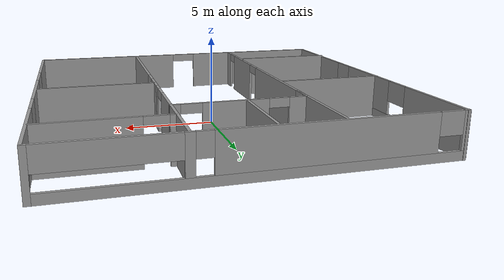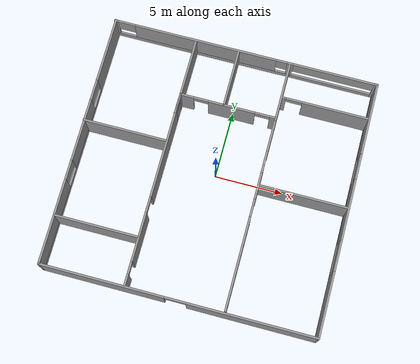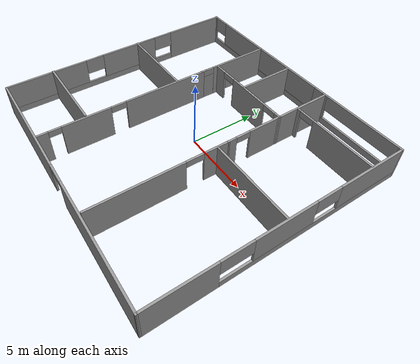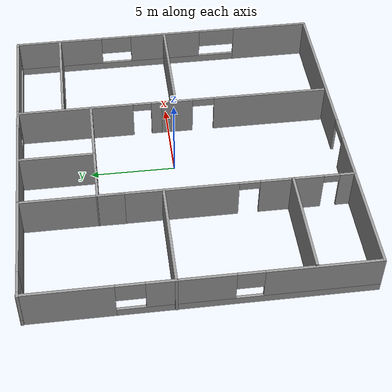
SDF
<?xml version="1.0" ?>
<sdf version="1.6">
  <world name="default">
    <include>
      <uri>file://home/user-221/meha/building_editor_models/Untitled/model.sdf</uri>
    </include>
  </world>
</sdf>

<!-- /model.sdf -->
<sdf version='1.7'>
  <model name='Untitled1'>
    <pose>-0.148351 -0.347684 0 0 -0 0</pose>
    <link name='Wall_0'>
      <pose>-9.906 7.5e-05 0 0 -0 -1.5708</pose>
      <visual name='Wall_0_Visual_0'>
        <pose>-7.01328 0 1.25 0 -0 0</pose>
        <geometry>
          <box>
            <size>4.97344 0.15 2.5</size>
          </box>
        </geometry>
        <material>
          <script>
            <uri>file://media/materials/scripts/gazebo.material</uri>
            <name>Gazebo/Grey</name>
          </script>
          <ambient>1 1 1 1</ambient>
        </material>
        <meta>
          <layer>0</layer>
        </meta>
      </visual>
      <collision name='Wall_0_Collision_0'>
        <geometry>
          <box>
            <size>4.97344 0.15 2.5</size>
          </box>
        </geometry>
        <pose>-7.01328 0 1.25 0 -0 0</pose>
      </collision>
      <visual name='Wall_0_Visual_1'>
        <pose>2.48672 0 0.25 0 -0 0</pose>
        <geometry>
          <box>
            <size>14.0266 0.15 0.5</size>
          </box>
        </geometry>
        <material>
          <script>
            <uri>file://media/materials/scripts/gazebo.material</uri>
            <name>Gazebo/Grey</name>
          </script>
          <ambient>1 1 1 1</ambient>
        </material>
        <meta>
          <layer>0</layer>
        </meta>
      </visual>
      <collision name='Wall_0_Collision_1'>
        <geometry>
          <box>
            <size>14.0266 0.15 0.5</size>
          </box>
        </geometry>
        <pose>2.48672 0 0.25 0 -0 0</pose>
      </collision>
      <visual name='Wall_0_Visual_2'>
        <pose>-0.614893 0 1.5 0 -0 0</pose>
        <geometry>
          <box>
            <size>4.7017 0.15 2</size>
          </box>
        </geometry>
        <material>
          <script>
            <uri>file://media/materials/scripts/gazebo.material</uri>
            <name>Gazebo/Grey</name>
          </script>
          <ambient>1 1 1 1</ambient>
        </material>
        <meta>
          <layer>0</layer>
        </meta>
      </visual>
      <collision name='Wall_0_Collision_2'>
        <geometry>
          <box>
            <size>4.7017 0.15 2</size>
          </box>
        </geometry>
        <pose>-0.614893 0 1.5 0 -0 0</pose>
      </collision>
      <visual name='Wall_0_Visual_3'>
        <pose>6.35026 0 1.5 0 -0 0</pose>
        <geometry>
          <box>
            <size>6.29948 0.15 2</size>
          </box>
        </geometry>
        <material>
          <script>
            <uri>file://media/materials/scripts/gazebo.material</uri>
            <name>Gazebo/Grey</name>
          </script>
          <ambient>1 1 1 1</ambient>
        </material>
        <meta>
          <layer>0</layer>
        </meta>
      </visual>
      <collision name='Wall_0_Collision_3'>
        <geometry>
          <box>
            <size>6.29948 0.15 2</size>
          </box>
        </geometry>
        <pose>6.35026 0 1.5 0 -0 0</pose>
      </collision>
      <visual name='Wall_0_Visual_4'>
        <pose>-3.74615 0 1.9 0 -0 0</pose>
        <geometry>
          <box>
            <size>1.56082 0.15 1.2</size>
          </box>
        </geometry>
        <material>
          <script>
            <uri>file://media/materials/scripts/gazebo.material</uri>
            <name>Gazebo/Grey</name>
          </script>
          <ambient>1 1 1 1</ambient>
        </material>
        <meta>
          <layer>0</layer>
        </meta>
      </visual>
      <collision name='Wall_0_Collision_4'>
        <geometry>
          <box>
            <size>1.56082 0.15 1.2</size>
          </box>
        </geometry>
        <pose>-3.74615 0 1.9 0 -0 0</pose>
      </collision>
      <visual name='Wall_0_Visual_5'>
        <pose>2.46824 0 1.9 0 -0 0</pose>
        <geometry>
          <box>
            <size>1.46456 0.15 1.2</size>
          </box>
        </geometry>
        <material>
          <script>
            <uri>file://media/materials/scripts/gazebo.material</uri>
            <name>Gazebo/Grey</name>
          </script>
          <ambient>1 1 1 1</ambient>
        </material>
        <meta>
          <layer>0</layer>
        </meta>
      </visual>
      <collision name='Wall_0_Collision_5'>
        <geometry>
          <box>
            <size>1.46456 0.15 1.2</size>
          </box>
        </geometry>
        <pose>2.46824 0 1.9 0 -0 0</pose>
      </collision>
    </link>
    <link name='Wall_14'>
      <collision name='Wall_14_Collision'>
        <geometry>
          <box>
            <size>4.3 0.15 2.5</size>
          </box>
        </geometry>
        <pose>0 0 1.25 0 -0 0</pose>
      </collision>
      <visual name='Wall_14_Visual'>
        <pose>0 0 1.25 0 -0 0</pose>
        <geometry>
          <box>
            <size>4.3 0.15 2.5</size>
          </box>
        </geometry>
        <material>
          <script>
            <uri>file://media/materials/scripts/gazebo.material</uri>
            <name>Gazebo/Grey</name>
          </script>
          <ambient>1 1 1 1</ambient>
        </material>
        <meta>
          <layer>0</layer>
        </meta>
      </visual>
      <pose>-0.498032 7.17588 0 0 -0 1.5708</pose>
    </link>
    <link name='Wall_16'>
      <pose>6.63269 6.70464 0 0 -0 0</pose>
      <visual name='Wall_16_Visual_0'>
        <pose>-3.07779 0 1.25 0 -0 0</pose>
        <geometry>
          <box>
            <size>0.344418 0.15 2.5</size>
          </box>
        </geometry>
        <material>
          <script>
            <uri>file://media/materials/scripts/gazebo.material</uri>
            <name>Gazebo/Grey</name>
          </script>
          <ambient>1 1 1 1</ambient>
        </material>
        <meta>
          <layer>0</layer>
        </meta>
      </visual>
      <collision name='Wall_16_Collision_0'>
        <geometry>
          <box>
            <size>0.344418 0.15 2.5</size>
          </box>
        </geometry>
        <pose>-3.07779 0 1.25 0 -0 0</pose>
      </collision>
      <visual name='Wall_16_Visual_1'>
        <pose>0.778731 0 1.25 0 -0 0</pose>
        <geometry>
          <box>
            <size>4.94254 0.15 2.5</size>
          </box>
        </geometry>
        <material>
          <script>
            <uri>file://media/materials/scripts/gazebo.material</uri>
            <name>Gazebo/Grey</name>
          </script>
          <ambient>1 1 1 1</ambient>
        </material>
        <meta>
          <layer>0</layer>
        </meta>
      </visual>
      <collision name='Wall_16_Collision_1'>
        <geometry>
          <box>
            <size>4.94254 0.15 2.5</size>
          </box>
        </geometry>
        <pose>0.778731 0 1.25 0 -0 0</pose>
      </collision>
      <visual name='Wall_16_Visual_2'>
        <pose>-2.29906 0 2.25 0 -0 0</pose>
        <geometry>
          <box>
            <size>1.21304 0.15 0.5</size>
          </box>
        </geometry>
        <material>
          <script>
            <uri>file://media/materials/scripts/gazebo.material</uri>
            <name>Gazebo/Grey</name>
          </script>
          <ambient>1 1 1 1</ambient>
        </material>
        <meta>
          <layer>0</layer>
        </meta>
      </visual>
      <collision name='Wall_16_Collision_2'>
        <geometry>
          <box>
            <size>1.21304 0.15 0.5</size>
          </box>
        </geometry>
        <pose>-2.29906 0 2.25 0 -0 0</pose>
      </collision>
    </link>
    <link name='Wall_18'>
      <collision name='Wall_18_Collision'>
        <geometry>
          <box>
            <size>6.5 0.15 2.5</size>
          </box>
        </geometry>
        <pose>0 0 1.25 0 -0 0</pose>
      </collision>
      <visual name='Wall_18_Visual'>
        <pose>0 0 1.25 0 -0 0</pose>
        <geometry>
          <box>
            <size>6.5 0.15 2.5</size>
          </box>
        </geometry>
        <material>
          <script>
            <uri>file://media/materials/scripts/gazebo.material</uri>
            <name>Gazebo/Grey</name>
          </script>
          <ambient>1 1 1 1</ambient>
        </material>
        <meta>
          <layer>0</layer>
        </meta>
      </visual>
      <pose>6.62268 -0.095935 0 0 -0 0</pose>
    </link>
    <link name='Wall_2'>
      <pose>0.019003 -9.42492 0 0 -0 0</pose>
      <visual name='Wall_2_Visual_0'>
        <pose>-5.4775 0 1.25 0 -0 0</pose>
        <geometry>
          <box>
            <size>9.045 0.15 2.5</size>
          </box>
        </geometry>
        <material>
          <script>
            <uri>file://media/materials/scripts/gazebo.material</uri>
            <name>Gazebo/Grey</name>
          </script>
          <ambient>1 1 1 1</ambient>
        </material>
        <meta>
          <layer>0</layer>
        </meta>
      </visual>
      <collision name='Wall_2_Collision_0'>
        <geometry>
          <box>
            <size>9.045 0.15 2.5</size>
          </box>
        </geometry>
        <pose>-5.4775 0 1.25 0 -0 0</pose>
      </collision>
      <visual name='Wall_2_Visual_1'>
        <pose>5.3025 0 1.25 0 -0 0</pose>
        <geometry>
          <box>
            <size>9.395 0.15 2.5</size>
          </box>
        </geometry>
        <material>
          <script>
            <uri>file://media/materials/scripts/gazebo.material</uri>
            <name>Gazebo/Grey</name>
          </script>
          <ambient>1 1 1 1</ambient>
        </material>
        <meta>
          <layer>0</layer>
        </meta>
      </visual>
      <collision name='Wall_2_Collision_1'>
        <geometry>
          <box>
            <size>9.395 0.15 2.5</size>
          </box>
        </geometry>
        <pose>5.3025 0 1.25 0 -0 0</pose>
      </collision>
      <visual name='Wall_2_Visual_2'>
        <pose>-0.175 0 2.25 0 -0 0</pose>
        <geometry>
          <box>
            <size>1.56 0.15 0.5</size>
          </box>
        </geometry>
        <material>
          <script>
            <uri>file://media/materials/scripts/gazebo.material</uri>
            <name>Gazebo/Grey</name>
          </script>
          <ambient>1 1 1 1</ambient>
        </material>
        <meta>
          <layer>0</layer>
        </meta>
      </visual>
      <collision name='Wall_2_Collision_2'>
        <geometry>
          <box>
            <size>1.56 0.15 0.5</size>
          </box>
        </geometry>
        <pose>-0.175 0 2.25 0 -0 0</pose>
      </collision>
    </link>
    <link name='Wall_20'>
      <collision name='Wall_20_Collision'>
        <geometry>
          <box>
            <size>6.25 0.15 2.5</size>
          </box>
        </geometry>
        <pose>0 0 1.25 0 -0 0</pose>
      </collision>
      <visual name='Wall_20_Visual'>
        <pose>0 0 1.25 0 -0 0</pose>
        <geometry>
          <box>
            <size>6.25 0.15 2.5</size>
          </box>
        </geometry>
        <material>
          <script>
            <uri>file://media/materials/scripts/gazebo.material</uri>
            <name>Gazebo/Grey</name>
          </script>
          <ambient>1 1 1 1</ambient>
        </material>
        <meta>
          <layer>0</layer>
        </meta>
      </visual>
      <pose>-6.886 1.38775 0 0 -0 0</pose>
    </link>
    <link name='Wall_22'>
      <collision name='Wall_22_Collision'>
        <geometry>
          <box>
            <size>6.1 0.15 2.6</size>
          </box>
        </geometry>
        <pose>0 0 1.3 0 -0 0</pose>
      </collision>
      <visual name='Wall_22_Visual'>
        <pose>0 0 1.3 0 -0 0</pose>
        <geometry>
          <box>
            <size>6.1 0.15 2.6</size>
          </box>
        </geometry>
        <material>
          <script>
            <uri>file://media/materials/scripts/gazebo.material</uri>
            <name>Gazebo/Grey</name>
          </script>
          <ambient>1 1 1 1</ambient>
        </material>
        <meta>
          <layer>0</layer>
        </meta>
      </visual>
      <pose>-6.83065 -5.87651 0 0 -0 0</pose>
    </link>
    <link name='Wall_28'>
      <pose>-0.176285 5.04782 0 0 -0 0</pose>
      <visual name='Wall_28_Visual_0'>
        <pose>-3.10233 0 1.25 0 -0 0</pose>
        <geometry>
          <box>
            <size>1.06435 0.15 2.5</size>
          </box>
        </geometry>
        <material>
          <script>
            <uri>file://media/materials/scripts/gazebo.material</uri>
            <name>Gazebo/Grey</name>
          </script>
          <ambient>1 1 1 1</ambient>
        </material>
        <meta>
          <layer>0</layer>
        </meta>
      </visual>
      <collision name='Wall_28_Collision_0'>
        <geometry>
          <box>
            <size>1.06435 0.15 2.5</size>
          </box>
        </geometry>
        <pose>-3.10233 0 1.25 0 -0 0</pose>
      </collision>
      <visual name='Wall_28_Visual_1'>
        <pose>0.258559 0 1.25 0 -0 0</pose>
        <geometry>
          <box>
            <size>3.47481 0.15 2.5</size>
          </box>
        </geometry>
        <material>
          <script>
            <uri>file://media/materials/scripts/gazebo.material</uri>
            <name>Gazebo/Grey</name>
          </script>
          <ambient>1 1 1 1</ambient>
        </material>
        <meta>
          <layer>0</layer>
        </meta>
      </visual>
      <collision name='Wall_28_Collision_1'>
        <geometry>
          <box>
            <size>3.47481 0.15 2.5</size>
          </box>
        </geometry>
        <pose>0.258559 0 1.25 0 -0 0</pose>
      </collision>
      <visual name='Wall_28_Visual_2'>
        <pose>3.36088 0 1.25 0 -0 0</pose>
        <geometry>
          <box>
            <size>0.547231 0.15 2.5</size>
          </box>
        </geometry>
        <material>
          <script>
            <uri>file://media/materials/scripts/gazebo.material</uri>
            <name>Gazebo/Grey</name>
          </script>
          <ambient>1 1 1 1</ambient>
        </material>
        <meta>
          <layer>0</layer>
        </meta>
      </visual>
      <collision name='Wall_28_Collision_2'>
        <geometry>
          <box>
            <size>0.547231 0.15 2.5</size>
          </box>
        </geometry>
        <pose>3.36088 0 1.25 0 -0 0</pose>
      </collision>
      <visual name='Wall_28_Visual_3'>
        <pose>-2.0245 0 2.25 0 -0 0</pose>
        <geometry>
          <box>
            <size>1.0913 0.15 0.5</size>
          </box>
        </geometry>
        <material>
          <script>
            <uri>file://media/materials/scripts/gazebo.material</uri>
            <name>Gazebo/Grey</name>
          </script>
          <ambient>1 1 1 1</ambient>
        </material>
        <meta>
          <layer>0</layer>
        </meta>
      </visual>
      <collision name='Wall_28_Collision_3'>
        <geometry>
          <box>
            <size>1.0913 0.15 0.5</size>
          </box>
        </geometry>
        <pose>-2.0245 0 2.25 0 -0 0</pose>
      </collision>
      <visual name='Wall_28_Visual_4'>
        <pose>2.54162 0 2.25 0 -0 0</pose>
        <geometry>
          <box>
            <size>1.0913 0.15 0.5</size>
          </box>
        </geometry>
        <material>
          <script>
            <uri>file://media/materials/scripts/gazebo.material</uri>
            <name>Gazebo/Grey</name>
          </script>
          <ambient>1 1 1 1</ambient>
        </material>
        <meta>
          <layer>0</layer>
        </meta>
      </visual>
      <collision name='Wall_28_Collision_4'>
        <geometry>
          <box>
            <size>1.0913 0.15 0.5</size>
          </box>
        </geometry>
        <pose>2.54162 0 2.25 0 -0 0</pose>
      </collision>
    </link>
    <link name='Wall_3'>
      <pose>9.92492 -0.055146 0 0 -0 1.57283</pose>
      <visual name='Wall_3_Visual_0'>
        <pose>-7.03749 0 1.25 0 -0 0</pose>
        <geometry>
          <box>
            <size>4.81461 0.15 2.5</size>
          </box>
        </geometry>
        <material>
          <script>
            <uri>file://media/materials/scripts/gazebo.material</uri>
            <name>Gazebo/Grey</name>
          </script>
          <ambient>1 1 1 1</ambient>
        </material>
        <meta>
          <layer>0</layer>
        </meta>
      </visual>
      <collision name='Wall_3_Collision_0'>
        <geometry>
          <box>
            <size>4.81461 0.15 2.5</size>
          </box>
        </geometry>
        <pose>-7.03749 0 1.25 0 -0 0</pose>
      </collision>
      <visual name='Wall_3_Visual_1'>
        <pose>2.40731 0 0.25 0 -0 0</pose>
        <geometry>
          <box>
            <size>14.075 0.15 0.5</size>
          </box>
        </geometry>
        <material>
          <script>
            <uri>file://media/materials/scripts/gazebo.material</uri>
            <name>Gazebo/Grey</name>
          </script>
          <ambient>1 1 1 1</ambient>
        </material>
        <meta>
          <layer>0</layer>
        </meta>
      </visual>
      <collision name='Wall_3_Collision_1'>
        <geometry>
          <box>
            <size>14.075 0.15 0.5</size>
          </box>
        </geometry>
        <pose>2.40731 0 0.25 0 -0 0</pose>
      </collision>
      <visual name='Wall_3_Visual_2'>
        <pose>-0.101167 0 1.5 0 -0 0</pose>
        <geometry>
          <box>
            <size>4.52208 0.15 2</size>
          </box>
        </geometry>
        <material>
          <script>
            <uri>file://media/materials/scripts/gazebo.material</uri>
            <name>Gazebo/Grey</name>
          </script>
          <ambient>1 1 1 1</ambient>
        </material>
        <meta>
          <layer>0</layer>
        </meta>
      </visual>
      <collision name='Wall_3_Collision_2'>
        <geometry>
          <box>
            <size>4.52208 0.15 2</size>
          </box>
        </geometry>
        <pose>-0.101167 0 1.5 0 -0 0</pose>
      </collision>
      <visual name='Wall_3_Visual_3'>
        <pose>6.75367 0 1.5 0 -0 0</pose>
        <geometry>
          <box>
            <size>5.38227 0.15 2</size>
          </box>
        </geometry>
        <material>
          <script>
            <uri>file://media/materials/scripts/gazebo.material</uri>
            <name>Gazebo/Grey</name>
          </script>
          <ambient>1 1 1 1</ambient>
        </material>
        <meta>
          <layer>0</layer>
        </meta>
      </visual>
      <collision name='Wall_3_Collision_3'>
        <geometry>
          <box>
            <size>5.38227 0.15 2</size>
          </box>
        </geometry>
        <pose>6.75367 0 1.5 0 -0 0</pose>
      </collision>
      <visual name='Wall_3_Visual_4'>
        <pose>-3.4962 0 1.9 0 -0 0</pose>
        <geometry>
          <box>
            <size>2.26797 0.15 1.2</size>
          </box>
        </geometry>
        <material>
          <script>
            <uri>file://media/materials/scripts/gazebo.material</uri>
            <name>Gazebo/Grey</name>
          </script>
          <ambient>1 1 1 1</ambient>
        </material>
        <meta>
          <layer>0</layer>
        </meta>
      </visual>
      <collision name='Wall_3_Collision_4'>
        <geometry>
          <box>
            <size>2.26797 0.15 1.2</size>
          </box>
        </geometry>
        <pose>-3.4962 0 1.9 0 -0 0</pose>
      </collision>
      <visual name='Wall_3_Visual_5'>
        <pose>3.1112 0 1.9 0 -0 0</pose>
        <geometry>
          <box>
            <size>1.90266 0.15 1.2</size>
          </box>
        </geometry>
        <material>
          <script>
            <uri>file://media/materials/scripts/gazebo.material</uri>
            <name>Gazebo/Grey</name>
          </script>
          <ambient>1 1 1 1</ambient>
        </material>
        <meta>
          <layer>0</layer>
        </meta>
      </visual>
      <collision name='Wall_3_Collision_5'>
        <geometry>
          <box>
            <size>1.90266 0.15 1.2</size>
          </box>
        </geometry>
        <pose>3.1112 0 1.9 0 -0 0</pose>
      </collision>
    </link>
    <link name='Wall_31'>
      <collision name='Wall_31_Collision'>
        <geometry>
          <box>
            <size>1.57673 0.15 2.5</size>
          </box>
        </geometry>
        <pose>0 0 1.25 0 -0 0</pose>
      </collision>
      <visual name='Wall_31_Visual'>
        <pose>0 0 1.25 0 -0 0</pose>
        <geometry>
          <box>
            <size>1.57673 0.15 2.5</size>
          </box>
        </geometry>
        <material>
          <script>
            <uri>file://media/materials/scripts/gazebo.material</uri>
            <name>Gazebo/Grey</name>
          </script>
          <ambient>1 1 1 1</ambient>
        </material>
        <meta>
          <layer>0</layer>
        </meta>
      </visual>
      <pose>-3.74397 4.3345 0 0 -0 -1.58227</pose>
    </link>
    <link name='Wall_33'>
      <pose>3.37747 2.83347 0 0 -0 1.5708</pose>
      <visual name='Wall_33_Visual_0'>
        <pose>-1.79434 0 1.25 0 -0 0</pose>
        <geometry>
          <box>
            <size>0.711314 0.15 2.5</size>
          </box>
        </geometry>
        <material>
          <script>
            <uri>file://media/materials/scripts/gazebo.material</uri>
            <name>Gazebo/Grey</name>
          </script>
          <ambient>1 1 1 1</ambient>
        </material>
        <meta>
          <layer>0</layer>
        </meta>
      </visual>
      <collision name='Wall_33_Collision_0'>
        <geometry>
          <box>
            <size>0.711314 0.15 2.5</size>
          </box>
        </geometry>
        <pose>-1.79434 0 1.25 0 -0 0</pose>
      </collision>
      <visual name='Wall_33_Visual_1'>
        <pose>0.903956 0 1.25 0 -0 0</pose>
        <geometry>
          <box>
            <size>2.49209 0.15 2.5</size>
          </box>
        </geometry>
        <material>
          <script>
            <uri>file://media/materials/scripts/gazebo.material</uri>
            <name>Gazebo/Grey</name>
          </script>
          <ambient>1 1 1 1</ambient>
        </material>
        <meta>
          <layer>0</layer>
        </meta>
      </visual>
      <collision name='Wall_33_Collision_1'>
        <geometry>
          <box>
            <size>2.49209 0.15 2.5</size>
          </box>
        </geometry>
        <pose>0.903956 0 1.25 0 -0 0</pose>
      </collision>
      <visual name='Wall_33_Visual_2'>
        <pose>-0.890387 0 2.25 0 -0 0</pose>
        <geometry>
          <box>
            <size>1.0966 0.15 0.5</size>
          </box>
        </geometry>
        <material>
          <script>
            <uri>file://media/materials/scripts/gazebo.material</uri>
            <name>Gazebo/Grey</name>
          </script>
          <ambient>1 1 1 1</ambient>
        </material>
        <meta>
          <layer>0</layer>
        </meta>
      </visual>
      <collision name='Wall_33_Collision_2'>
        <geometry>
          <box>
            <size>1.0966 0.15 0.5</size>
          </box>
        </geometry>
        <pose>-0.890387 0 2.25 0 -0 0</pose>
      </collision>
    </link>
    <link name='Wall_35'>
      <collision name='Wall_35_Collision'>
        <geometry>
          <box>
            <size>4.5 0.15 2.5</size>
          </box>
        </geometry>
        <pose>0 0 1.25 0 -0 0</pose>
      </collision>
      <visual name='Wall_35_Visual'>
        <pose>0 0 1.25 0 -0 0</pose>
        <geometry>
          <box>
            <size>4.5 0.15 2.5</size>
          </box>
        </geometry>
        <material>
          <script>
            <uri>file://media/materials/scripts/gazebo.material</uri>
            <name>Gazebo/Grey</name>
          </script>
          <ambient>1 1 1 1</ambient>
        </material>
        <meta>
          <layer>0</layer>
        </meta>
      </visual>
      <pose>-3.73578 7.22282 0 0 -0 1.5708</pose>
    </link>
    <link name='Wall_37'>
      <collision name='Wall_37_Collision'>
        <geometry>
          <box>
            <size>4.5 0.15 2.5</size>
          </box>
        </geometry>
        <pose>0 0 1.25 0 -0 0</pose>
      </collision>
      <visual name='Wall_37_Visual'>
        <pose>0 0 1.25 0 -0 0</pose>
        <geometry>
          <box>
            <size>4.5 0.15 2.5</size>
          </box>
        </geometry>
        <material>
          <script>
            <uri>file://media/materials/scripts/gazebo.material</uri>
            <name>Gazebo/Grey</name>
          </script>
          <ambient>1 1 1 1</ambient>
        </material>
        <meta>
          <layer>0</layer>
        </meta>
      </visual>
      <pose>3.37747 7.08347 0 0 -0 1.5708</pose>
    </link>
    <link name='Wall_4'>
      <pose>-0.019156 9.40119 0 0 -0 3.14159</pose>
      <visual name='Wall_4_Visual_0'>
        <pose>-9.8488 0 1.25 0 -0 0</pose>
        <geometry>
          <box>
            <size>0.302409 0.15 2.5</size>
          </box>
        </geometry>
        <material>
          <script>
            <uri>file://media/materials/scripts/gazebo.material</uri>
            <name>Gazebo/Grey</name>
          </script>
          <ambient>1 1 1 1</ambient>
        </material>
        <meta>
          <layer>0</layer>
        </meta>
      </visual>
      <collision name='Wall_4_Collision_0'>
        <geometry>
          <box>
            <size>0.302409 0.15 2.5</size>
          </box>
        </geometry>
        <pose>-9.8488 0 1.25 0 -0 0</pose>
      </collision>
      <visual name='Wall_4_Visual_1'>
        <pose>0.151205 0 0.25 0 -0 0</pose>
        <geometry>
          <box>
            <size>19.6976 0.15 0.5</size>
          </box>
        </geometry>
        <material>
          <script>
            <uri>file://media/materials/scripts/gazebo.material</uri>
            <name>Gazebo/Grey</name>
          </script>
          <ambient>1 1 1 1</ambient>
        </material>
        <meta>
          <layer>0</layer>
        </meta>
      </visual>
      <collision name='Wall_4_Collision_1'>
        <geometry>
          <box>
            <size>19.6976 0.15 0.5</size>
          </box>
        </geometry>
        <pose>0.151205 0 0.25 0 -0 0</pose>
      </collision>
      <visual name='Wall_4_Visual_2'>
        <pose>-3.39819 0 1.5 0 -0 0</pose>
        <geometry>
          <box>
            <size>0.459674 0.15 2</size>
          </box>
        </geometry>
        <material>
          <script>
            <uri>file://media/materials/scripts/gazebo.material</uri>
            <name>Gazebo/Grey</name>
          </script>
          <ambient>1 1 1 1</ambient>
        </material>
        <meta>
          <layer>0</layer>
        </meta>
      </visual>
      <collision name='Wall_4_Collision_2'>
        <geometry>
          <box>
            <size>0.459674 0.15 2</size>
          </box>
        </geometry>
        <pose>-3.39819 0 1.5 0 -0 0</pose>
      </collision>
      <visual name='Wall_4_Visual_3'>
        <pose>3.01724 0 1.5 0 -0 0</pose>
        <geometry>
          <box>
            <size>10.7712 0.15 2</size>
          </box>
        </geometry>
        <material>
          <script>
            <uri>file://media/materials/scripts/gazebo.material</uri>
            <name>Gazebo/Grey</name>
          </script>
          <ambient>1 1 1 1</ambient>
        </material>
        <meta>
          <layer>0</layer>
        </meta>
      </visual>
      <collision name='Wall_4_Collision_3'>
        <geometry>
          <box>
            <size>10.7712 0.15 2</size>
          </box>
        </geometry>
        <pose>3.01724 0 1.5 0 -0 0</pose>
      </collision>
      <visual name='Wall_4_Visual_4'>
        <pose>9.83429 0 1.5 0 -0 0</pose>
        <geometry>
          <box>
            <size>0.331422 0.15 2</size>
          </box>
        </geometry>
        <material>
          <script>
            <uri>file://media/materials/scripts/gazebo.material</uri>
            <name>Gazebo/Grey</name>
          </script>
          <ambient>1 1 1 1</ambient>
        </material>
        <meta>
          <layer>0</layer>
        </meta>
      </visual>
      <collision name='Wall_4_Collision_4'>
        <geometry>
          <box>
            <size>0.331422 0.15 2</size>
          </box>
        </geometry>
        <pose>9.83429 0 1.5 0 -0 0</pose>
      </collision>
      <visual name='Wall_4_Visual_5'>
        <pose>-6.66281 0 1.9 0 -0 0</pose>
        <geometry>
          <box>
            <size>6.06956 0.15 1.2</size>
          </box>
        </geometry>
        <material>
          <script>
            <uri>file://media/materials/scripts/gazebo.material</uri>
            <name>Gazebo/Grey</name>
          </script>
          <ambient>1 1 1 1</ambient>
        </material>
        <meta>
          <layer>0</layer>
        </meta>
      </visual>
      <collision name='Wall_4_Collision_5'>
        <geometry>
          <box>
            <size>6.06956 0.15 1.2</size>
          </box>
        </geometry>
        <pose>-6.66281 0 1.9 0 -0 0</pose>
      </collision>
      <visual name='Wall_4_Visual_6'>
        <pose>-2.76835 0 1.9 0 -0 0</pose>
        <geometry>
          <box>
            <size>0.8 0.15 1.2</size>
          </box>
        </geometry>
        <material>
          <script>
            <uri>file://media/materials/scripts/gazebo.material</uri>
            <name>Gazebo/Grey</name>
          </script>
          <ambient>1 1 1 1</ambient>
        </material>
        <meta>
          <layer>0</layer>
        </meta>
      </visual>
      <collision name='Wall_4_Collision_6'>
        <geometry>
          <box>
            <size>0.8 0.15 1.2</size>
          </box>
        </geometry>
        <pose>-2.76835 0 1.9 0 -0 0</pose>
      </collision>
      <visual name='Wall_4_Visual_7'>
        <pose>9.0357 0 1.9 0 -0 0</pose>
        <geometry>
          <box>
            <size>1.26575 0.15 1.2</size>
          </box>
        </geometry>
        <material>
          <script>
            <uri>file://media/materials/scripts/gazebo.material</uri>
            <name>Gazebo/Grey</name>
          </script>
          <ambient>1 1 1 1</ambient>
        </material>
        <meta>
          <layer>0</layer>
        </meta>
      </visual>
      <collision name='Wall_4_Collision_7'>
        <geometry>
          <box>
            <size>1.26575 0.15 1.2</size>
          </box>
        </geometry>
        <pose>9.0357 0 1.9 0 -0 0</pose>
      </collision>
    </link>
    <link name='Wall_6'>
      <pose>-3.74397 -2.1405 0 0 -0 1.56966</pose>
      <visual name='Wall_6_Visual_0'>
        <pose>-6.83847 0 1.25 0 -0 0</pose>
        <geometry>
          <box>
            <size>0.849705 0.15 2.5</size>
          </box>
        </geometry>
        <material>
          <script>
            <uri>file://media/materials/scripts/gazebo.material</uri>
            <name>Gazebo/Grey</name>
          </script>
          <ambient>1 1 1 1</ambient>
        </material>
        <meta>
          <layer>0</layer>
        </meta>
      </visual>
      <collision name='Wall_6_Collision_0'>
        <geometry>
          <box>
            <size>0.849705 0.15 2.5</size>
          </box>
        </geometry>
        <pose>-6.83847 0 1.25 0 -0 0</pose>
      </collision>
      <visual name='Wall_6_Visual_1'>
        <pose>-3.70218 0 1.25 0 -0 0</pose>
        <geometry>
          <box>
            <size>3.62287 0.15 2.5</size>
          </box>
        </geometry>
        <material>
          <script>
            <uri>file://media/materials/scripts/gazebo.material</uri>
            <name>Gazebo/Grey</name>
          </script>
          <ambient>1 1 1 1</ambient>
        </material>
        <meta>
          <layer>0</layer>
        </meta>
      </visual>
      <collision name='Wall_6_Collision_1'>
        <geometry>
          <box>
            <size>3.62287 0.15 2.5</size>
          </box>
        </geometry>
        <pose>-3.70218 0 1.25 0 -0 0</pose>
      </collision>
      <visual name='Wall_6_Visual_2'>
        <pose>2.58374 0 1.25 0 -0 0</pose>
        <geometry>
          <box>
            <size>6.6001 0.15 2.5</size>
          </box>
        </geometry>
        <material>
          <script>
            <uri>file://media/materials/scripts/gazebo.material</uri>
            <name>Gazebo/Grey</name>
          </script>
          <ambient>1 1 1 1</ambient>
        </material>
        <meta>
          <layer>0</layer>
        </meta>
      </visual>
      <collision name='Wall_6_Collision_2'>
        <geometry>
          <box>
            <size>6.6001 0.15 2.5</size>
          </box>
        </geometry>
        <pose>2.58374 0 1.25 0 -0 0</pose>
      </collision>
      <visual name='Wall_6_Visual_3'>
        <pose>7.02356 0 1.25 0 -0 0</pose>
        <geometry>
          <box>
            <size>0.479529 0.15 2.5</size>
          </box>
        </geometry>
        <material>
          <script>
            <uri>file://media/materials/scripts/gazebo.material</uri>
            <name>Gazebo/Grey</name>
          </script>
          <ambient>1 1 1 1</ambient>
        </material>
        <meta>
          <layer>0</layer>
        </meta>
      </visual>
      <collision name='Wall_6_Collision_3'>
        <geometry>
          <box>
            <size>0.479529 0.15 2.5</size>
          </box>
        </geometry>
        <pose>7.02356 0 1.25 0 -0 0</pose>
      </collision>
      <visual name='Wall_6_Visual_4'>
        <pose>-5.96362 0 2.25 0 -0 0</pose>
        <geometry>
          <box>
            <size>0.9 0.15 0.5</size>
          </box>
        </geometry>
        <material>
          <script>
            <uri>file://media/materials/scripts/gazebo.material</uri>
            <name>Gazebo/Grey</name>
          </script>
          <ambient>1 1 1 1</ambient>
        </material>
        <meta>
          <layer>0</layer>
        </meta>
      </visual>
      <collision name='Wall_6_Collision_4'>
        <geometry>
          <box>
            <size>0.9 0.15 0.5</size>
          </box>
        </geometry>
        <pose>-5.96362 0 2.25 0 -0 0</pose>
      </collision>
      <visual name='Wall_6_Visual_5'>
        <pose>-1.30353 0 2.25 0 -0 0</pose>
        <geometry>
          <box>
            <size>1.17444 0.15 0.5</size>
          </box>
        </geometry>
        <material>
          <script>
            <uri>file://media/materials/scripts/gazebo.material</uri>
            <name>Gazebo/Grey</name>
          </script>
          <ambient>1 1 1 1</ambient>
        </material>
        <meta>
          <layer>0</layer>
        </meta>
      </visual>
      <collision name='Wall_6_Collision_5'>
        <geometry>
          <box>
            <size>1.17444 0.15 0.5</size>
          </box>
        </geometry>
        <pose>-1.30353 0 2.25 0 -0 0</pose>
      </collision>
      <visual name='Wall_6_Visual_6'>
        <pose>6.33379 0 2.25 0 -0 0</pose>
        <geometry>
          <box>
            <size>0.9 0.15 0.5</size>
          </box>
        </geometry>
        <material>
          <script>
            <uri>file://media/materials/scripts/gazebo.material</uri>
            <name>Gazebo/Grey</name>
          </script>
          <ambient>1 1 1 1</ambient>
        </material>
        <meta>
          <layer>0</layer>
        </meta>
      </visual>
      <collision name='Wall_6_Collision_6'>
        <geometry>
          <box>
            <size>0.9 0.15 0.5</size>
          </box>
        </geometry>
        <pose>6.33379 0 2.25 0 -0 0</pose>
      </collision>
    </link>
    <link name='Wall_8'>
      <pose>3.37272 -4.239 0 0 -0 -1.57175</pose>
      <visual name='Wall_8_Visual_0'>
        <pose>-4.08542 0 1.25 0 -0 0</pose>
        <geometry>
          <box>
            <size>1.97411 0.15 2.5</size>
          </box>
        </geometry>
        <material>
          <script>
            <uri>file://media/materials/scripts/gazebo.material</uri>
            <name>Gazebo/Grey</name>
          </script>
          <ambient>1 1 1 1</ambient>
        </material>
        <meta>
          <layer>0</layer>
        </meta>
      </visual>
      <collision name='Wall_8_Collision_0'>
        <geometry>
          <box>
            <size>1.97411 0.15 2.5</size>
          </box>
        </geometry>
        <pose>-4.08542 0 1.25 0 -0 0</pose>
      </collision>
      <visual name='Wall_8_Visual_1'>
        <pose>1.64288 0 1.25 0 -0 0</pose>
        <geometry>
          <box>
            <size>6.85917 0.15 2.5</size>
          </box>
        </geometry>
        <material>
          <script>
            <uri>file://media/materials/scripts/gazebo.material</uri>
            <name>Gazebo/Grey</name>
          </script>
          <ambient>1 1 1 1</ambient>
        </material>
        <meta>
          <layer>0</layer>
        </meta>
      </visual>
      <collision name='Wall_8_Collision_1'>
        <geometry>
          <box>
            <size>6.85917 0.15 2.5</size>
          </box>
        </geometry>
        <pose>1.64288 0 1.25 0 -0 0</pose>
      </collision>
      <visual name='Wall_8_Visual_2'>
        <pose>-2.44253 0 2.25 0 -0 0</pose>
        <geometry>
          <box>
            <size>1.31166 0.15 0.5</size>
          </box>
        </geometry>
        <material>
          <script>
            <uri>file://media/materials/scripts/gazebo.material</uri>
            <name>Gazebo/Grey</name>
          </script>
          <ambient>1 1 1 1</ambient>
        </material>
        <meta>
          <layer>0</layer>
        </meta>
      </visual>
      <collision name='Wall_8_Collision_2'>
        <geometry>
          <box>
            <size>1.31166 0.15 0.5</size>
          </box>
        </geometry>
        <pose>-2.44253 0 2.25 0 -0 0</pose>
      </collision>
    </link>
    <static>1</static>
  </model>
</sdf>
